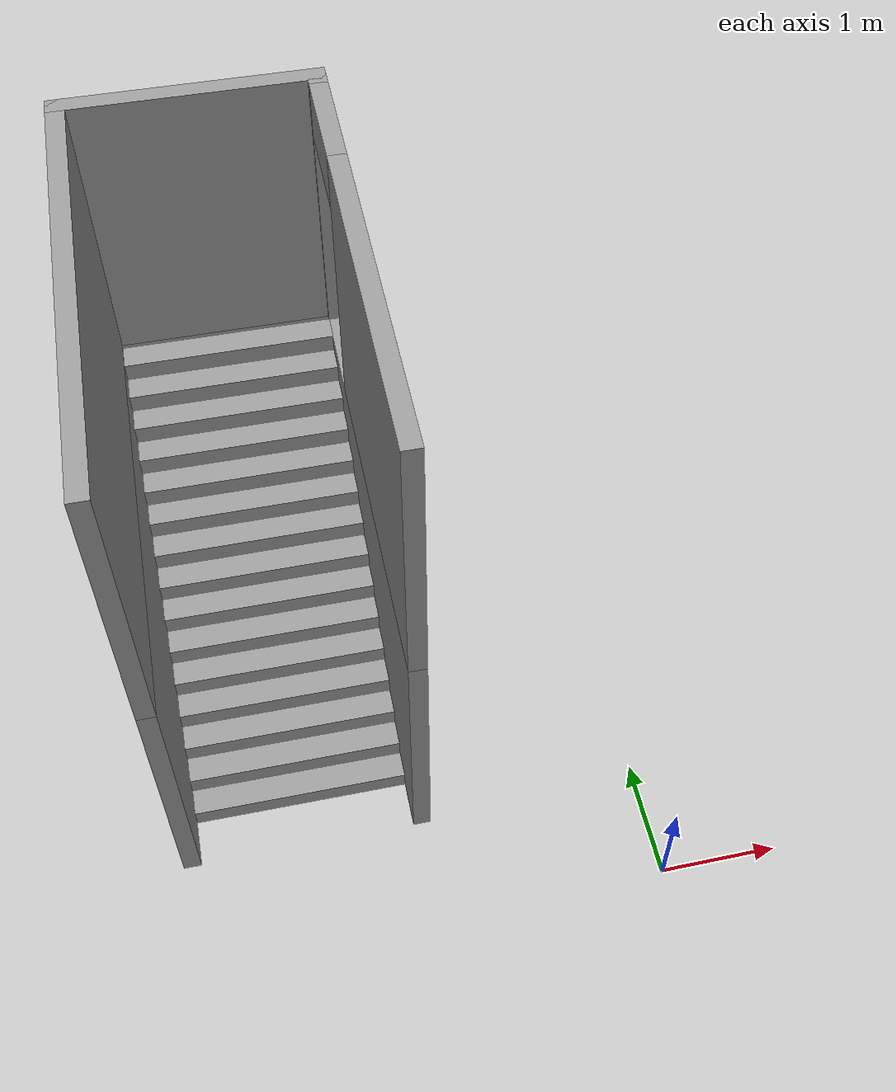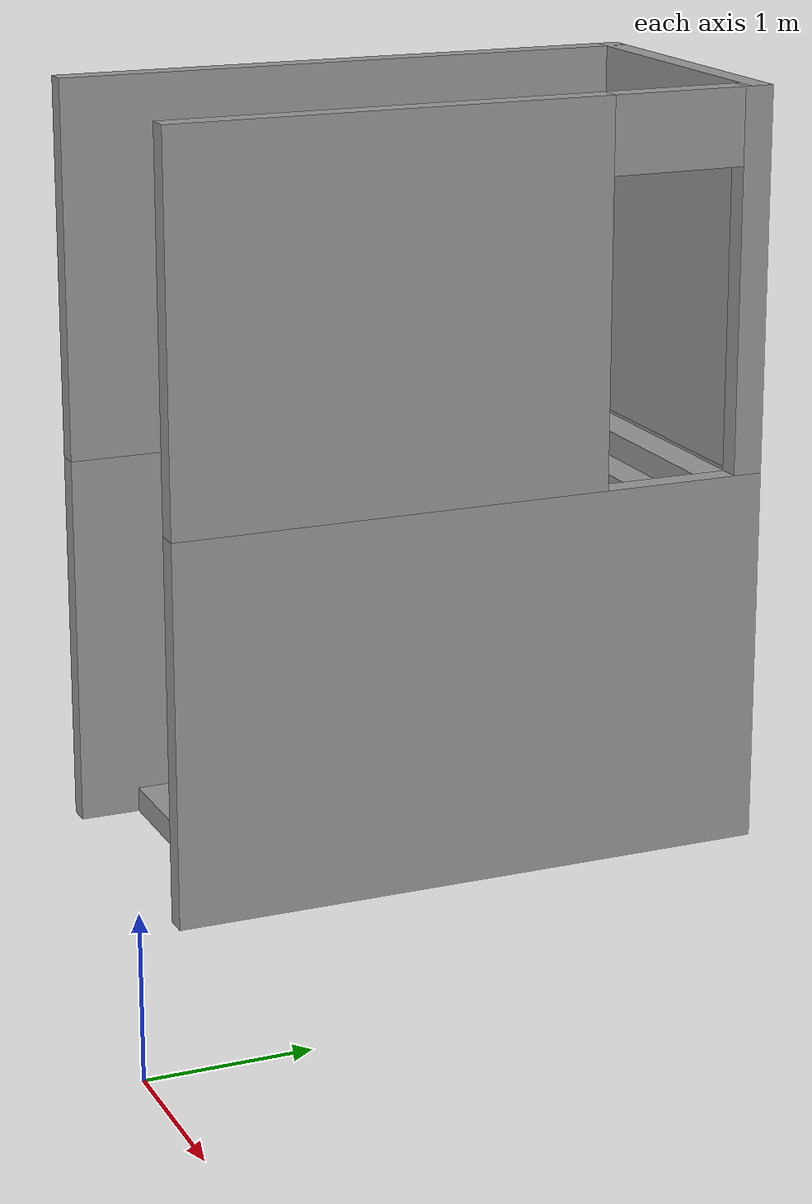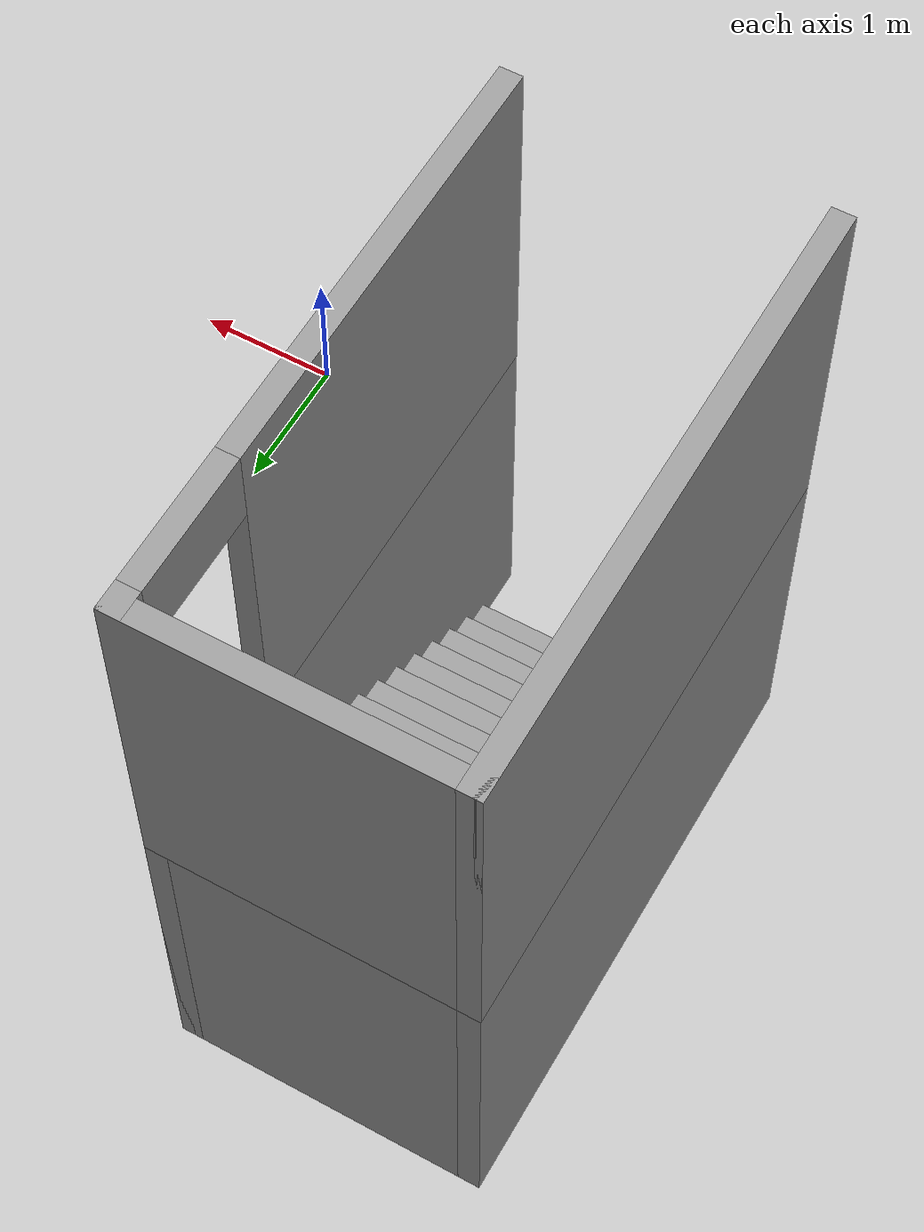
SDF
<sdf version="1.6">
 <model name="testbuilding">
  <link name="Stairs_1">
   <visual name="Stairs_1_Visual_6">
    <pose>-2.92151 2.72858 1.08333 0 -0 -3.14159</pose>
    <geometry><box><size>1.85169 0.227504 0.166667</size></box></geometry>
    <material>
     <script><uri>file://media/materials/scripts/gazebo.material</uri><name>Gazebo/Grey</name></script>
     <ambient>1 1 1 1</ambient>
    </material>
    <meta><layer>0</layer></meta>
   </visual>
   <visual name="Stairs_1_Visual_0">
    <pose>-2.92151 1.36356 0.083333 0 -0 -3.14159</pose>
    <geometry><box><size>1.85169 0.227504 0.166667</size></box></geometry>
    <material>
     <script><uri>file://media/materials/scripts/gazebo.material</uri><name>Gazebo/Grey</name></script>
     <ambient>1 1 1 1</ambient>
    </material>
    <meta><layer>0</layer></meta>
   </visual>
   <visual name="Stairs_1_Visual_1">
    <pose>-2.92151 1.59106 0.25 0 -0 -3.14159</pose>
    <geometry><box><size>1.85169 0.227504 0.166667</size></box></geometry>
    <material>
     <script><uri>file://media/materials/scripts/gazebo.material</uri><name>Gazebo/Grey</name></script>
     <ambient>1 1 1 1</ambient>
    </material>
    <meta><layer>0</layer></meta>
   </visual>
   <visual name="Stairs_1_Visual_2">
    <pose>-2.92151 1.81856 0.416667 0 -0 -3.14159</pose>
    <geometry><box><size>1.85169 0.227504 0.166667</size></box></geometry>
    <material>
     <script><uri>file://media/materials/scripts/gazebo.material</uri><name>Gazebo/Grey</name></script>
     <ambient>1 1 1 1</ambient>
    </material>
    <meta><layer>0</layer></meta>
   </visual>
   <visual name="Stairs_1_Visual_3">
    <pose>-2.92151 2.04607 0.583333 0 -0 -3.14159</pose>
    <geometry><box><size>1.85169 0.227504 0.166667</size></box></geometry>
    <material>
     <script><uri>file://media/materials/scripts/gazebo.material</uri><name>Gazebo/Grey</name></script>
     <ambient>1 1 1 1</ambient>
    </material>
    <meta><layer>0</layer></meta>
   </visual>
   <visual name="Stairs_1_Visual_4">
    <pose>-2.92151 2.27357 0.75 0 -0 -3.14159</pose>
    <geometry><box><size>1.85169 0.227504 0.166667</size></box></geometry>
    <material>
     <script><uri>file://media/materials/scripts/gazebo.material</uri><name>Gazebo/Grey</name></script>
     <ambient>1 1 1 1</ambient>
    </material>
    <meta><layer>0</layer></meta>
   </visual>
   <visual name="Stairs_1_Visual_5">
    <pose>-2.92151 2.50108 0.916667 0 -0 -3.14159</pose>
    <geometry><box><size>1.85169 0.227504 0.166667</size></box></geometry>
    <material>
     <script><uri>file://media/materials/scripts/gazebo.material</uri><name>Gazebo/Grey</name></script>
     <ambient>1 1 1 1</ambient>
    </material>
    <meta><layer>0</layer></meta>
   </visual>
   <visual name="Stairs_1_Visual_7">
    <pose>-2.92151 2.95609 1.25 0 -0 -3.14159</pose>
    <geometry><box><size>1.85169 0.227504 0.166667</size></box></geometry>
    <material>
     <script><uri>file://media/materials/scripts/gazebo.material</uri><name>Gazebo/Grey</name></script>
     <ambient>1 1 1 1</ambient>
    </material>
    <meta><layer>0</layer></meta>
   </visual>
   <visual name="Stairs_1_Visual_8">
    <pose>-2.92151 3.18359 1.41667 0 -0 -3.14159</pose>
    <geometry><box><size>1.85169 0.227504 0.166667</size></box></geometry>
    <material>
     <script><uri>file://media/materials/scripts/gazebo.material</uri><name>Gazebo/Grey</name></script>
     <ambient>1 1 1 1</ambient>
    </material>
    <meta><layer>0</layer></meta>
   </visual>
   <visual name="Stairs_1_Visual_9">
    <pose>-2.92151 3.41109 1.58333 0 -0 -3.14159</pose>
    <geometry><box><size>1.85169 0.227504 0.166667</size></box></geometry>
    <material>
     <script><uri>file://media/materials/scripts/gazebo.material</uri><name>Gazebo/Grey</name></script>
     <ambient>1 1 1 1</ambient>
    </material>
    <meta><layer>0</layer></meta>
   </visual>
   <visual name="Stairs_1_Visual_10">
    <pose>-2.92151 3.6386 1.75 0 -0 -3.14159</pose>
    <geometry><box><size>1.85169 0.227504 0.166667</size></box></geometry>
    <material>
     <script><uri>file://media/materials/scripts/gazebo.material</uri><name>Gazebo/Grey</name></script>
     <ambient>1 1 1 1</ambient>
    </material>
    <meta><layer>0</layer></meta>
   </visual>
   <visual name="Stairs_1_Visual_11">
    <pose>-2.92151 3.8661 1.91667 0 -0 -3.14159</pose>
    <geometry><box><size>1.85169 0.227504 0.166667</size></box></geometry>
    <material>
     <script><uri>file://media/materials/scripts/gazebo.material</uri><name>Gazebo/Grey</name></script>
     <ambient>1 1 1 1</ambient>
    </material>
    <meta><layer>0</layer></meta>
   </visual>
   <visual name="Stairs_1_Visual_12">
    <pose>-2.92151 4.09361 2.08333 0 -0 -3.14159</pose>
    <geometry><box><size>1.85169 0.227504 0.166667</size></box></geometry>
    <material>
     <script><uri>file://media/materials/scripts/gazebo.material</uri><name>Gazebo/Grey</name></script>
     <ambient>1 1 1 1</ambient>
    </material>
    <meta><layer>0</layer></meta>
   </visual>
   <visual name="Stairs_1_Visual_13">
    <pose>-2.92151 4.32111 2.25 0 -0 -3.14159</pose>
    <geometry><box><size>1.85169 0.227504 0.166667</size></box></geometry>
    <material>
     <script><uri>file://media/materials/scripts/gazebo.material</uri><name>Gazebo/Grey</name></script>
     <ambient>1 1 1 1</ambient>
    </material>
    <meta><layer>0</layer></meta>
   </visual>
   <visual name="Stairs_1_Visual_14">
    <pose>-2.92151 4.54862 2.41667 0 -0 -3.14159</pose>
    <geometry><box><size>1.85169 0.227504 0.166667</size></box></geometry>
    <material>
     <script><uri>file://media/materials/scripts/gazebo.material</uri><name>Gazebo/Grey</name></script>
     <ambient>1 1 1 1</ambient>
    </material>
    <meta><layer>0</layer></meta>
   </visual>
   <collision name="Stairs_1_Collision_0">
    <pose>-2.92151 1.36356 0.083333 0 0 -3.14159</pose>
    <geometry><box><size>1.85169 0.227504 0.166667</size></box></geometry>
    <surface>
     <friction>
      <ode><mu>1</mu><mu2>1</mu2><fdir1>0 0 0</fdir1><slip1>0</slip1><slip2>0</slip2></ode>
      <torsional>
       <coefficient>1</coefficient>
       <patch_radius>0</patch_radius>
       <surface_radius>0</surface_radius>
       <use_patch_radius>1</use_patch_radius>
       <ode><slip>0</slip></ode>
      </torsional>
     </friction>
     <bounce><restitution_coefficient>0</restitution_coefficient><threshold>1e+06</threshold></bounce>
     <contact>
      <collide_without_contact>0</collide_without_contact>
      <collide_without_contact_bitmask>1</collide_without_contact_bitmask>
      <collide_bitmask>1</collide_bitmask>
      <ode>
       <soft_cfm>0</soft_cfm>
       <soft_erp>0.2</soft_erp>
       <kp>1e+13</kp>
       <kd>1</kd>
       <max_vel>0.01</max_vel>
       <min_depth>0</min_depth>
      </ode>
      <bullet>
       <split_impulse>1</split_impulse>
       <split_impulse_penetration_threshold>-0.01</split_impulse_penetration_threshold>
       <soft_cfm>0</soft_cfm>
       <soft_erp>0.2</soft_erp>
       <kp>1e+13</kp>
       <kd>1</kd>
      </bullet>
     </contact>
    </surface>
   </collision>
   <collision name="Stairs_1_Collision_1">
    <pose>-2.92151 1.59106 0.25 0 0 -3.14159</pose>
    <geometry><box><size>1.85169 0.227504 0.166667</size></box></geometry>
    <surface>
     <friction>
      <ode><mu>1</mu><mu2>1</mu2><fdir1>0 0 0</fdir1><slip1>0</slip1><slip2>0</slip2></ode>
      <torsional>
       <coefficient>1</coefficient>
       <patch_radius>0</patch_radius>
       <surface_radius>0</surface_radius>
       <use_patch_radius>1</use_patch_radius>
       <ode><slip>0</slip></ode>
      </torsional>
     </friction>
     <bounce><restitution_coefficient>0</restitution_coefficient><threshold>1e+06</threshold></bounce>
     <contact>
      <collide_without_contact>0</collide_without_contact>
      <collide_without_contact_bitmask>1</collide_without_contact_bitmask>
      <collide_bitmask>1</collide_bitmask>
      <ode>
       <soft_cfm>0</soft_cfm>
       <soft_erp>0.2</soft_erp>
       <kp>1e+13</kp>
       <kd>1</kd>
       <max_vel>0.01</max_vel>
       <min_depth>0</min_depth>
      </ode>
      <bullet>
       <split_impulse>1</split_impulse>
       <split_impulse_penetration_threshold>-0.01</split_impulse_penetration_threshold>
       <soft_cfm>0</soft_cfm>
       <soft_erp>0.2</soft_erp>
       <kp>1e+13</kp>
       <kd>1</kd>
      </bullet>
     </contact>
    </surface>
   </collision>
   <collision name="Stairs_1_Collision_2">
    <pose>-2.92151 1.81856 0.416667 0 0 -3.14159</pose>
    <geometry><box><size>1.85169 0.227504 0.166667</size></box></geometry>
    <surface>
     <friction>
      <ode><mu>1</mu><mu2>1</mu2><fdir1>0 0 0</fdir1><slip1>0</slip1><slip2>0</slip2></ode>
      <torsional>
       <coefficient>1</coefficient>
       <patch_radius>0</patch_radius>
       <surface_radius>0</surface_radius>
       <use_patch_radius>1</use_patch_radius>
       <ode><slip>0</slip></ode>
      </torsional>
     </friction>
     <bounce><restitution_coefficient>0</restitution_coefficient><threshold>1e+06</threshold></bounce>
     <contact>
      <collide_without_contact>0</collide_without_contact>
      <collide_without_contact_bitmask>1</collide_without_contact_bitmask>
      <collide_bitmask>1</collide_bitmask>
      <ode>
       <soft_cfm>0</soft_cfm>
       <soft_erp>0.2</soft_erp>
       <kp>1e+13</kp>
       <kd>1</kd>
       <max_vel>0.01</max_vel>
       <min_depth>0</min_depth>
      </ode>
      <bullet>
       <split_impulse>1</split_impulse>
       <split_impulse_penetration_threshold>-0.01</split_impulse_penetration_threshold>
       <soft_cfm>0</soft_cfm>
       <soft_erp>0.2</soft_erp>
       <kp>1e+13</kp>
       <kd>1</kd>
      </bullet>
     </contact>
    </surface>
   </collision>
   <collision name="Stairs_1_Collision_3">
    <pose>-2.92151 2.04607 0.583333 0 0 -3.14159</pose>
    <geometry><box><size>1.85169 0.227504 0.166667</size></box></geometry>
    <surface>
     <friction>
      <ode><mu>1</mu><mu2>1</mu2><fdir1>0 0 0</fdir1><slip1>0</slip1><slip2>0</slip2></ode>
      <torsional>
       <coefficient>1</coefficient>
       <patch_radius>0</patch_radius>
       <surface_radius>0</surface_radius>
       <use_patch_radius>1</use_patch_radius>
       <ode><slip>0</slip></ode>
      </torsional>
     </friction>
     <bounce><restitution_coefficient>0</restitution_coefficient><threshold>1e+06</threshold></bounce>
     <contact>
      <collide_without_contact>0</collide_without_contact>
      <collide_without_contact_bitmask>1</collide_without_contact_bitmask>
      <collide_bitmask>1</collide_bitmask>
      <ode>
       <soft_cfm>0</soft_cfm>
       <soft_erp>0.2</soft_erp>
       <kp>1e+13</kp>
       <kd>1</kd>
       <max_vel>0.01</max_vel>
       <min_depth>0</min_depth>
      </ode>
      <bullet>
       <split_impulse>1</split_impulse>
       <split_impulse_penetration_threshold>-0.01</split_impulse_penetration_threshold>
       <soft_cfm>0</soft_cfm>
       <soft_erp>0.2</soft_erp>
       <kp>1e+13</kp>
       <kd>1</kd>
      </bullet>
     </contact>
    </surface>
   </collision>
   <collision name="Stairs_1_Collision_4">
    <pose>-2.92151 2.27357 0.75 0 0 -3.14159</pose>
    <geometry><box><size>1.85169 0.227504 0.166667</size></box></geometry>
    <surface>
     <friction>
      <ode><mu>1</mu><mu2>1</mu2><fdir1>0 0 0</fdir1><slip1>0</slip1><slip2>0</slip2></ode>
      <torsional>
       <coefficient>1</coefficient>
       <patch_radius>0</patch_radius>
       <surface_radius>0</surface_radius>
       <use_patch_radius>1</use_patch_radius>
       <ode><slip>0</slip></ode>
      </torsional>
     </friction>
     <bounce><restitution_coefficient>0</restitution_coefficient><threshold>1e+06</threshold></bounce>
     <contact>
      <collide_without_contact>0</collide_without_contact>
      <collide_without_contact_bitmask>1</collide_without_contact_bitmask>
      <collide_bitmask>1</collide_bitmask>
      <ode>
       <soft_cfm>0</soft_cfm>
       <soft_erp>0.2</soft_erp>
       <kp>1e+13</kp>
       <kd>1</kd>
       <max_vel>0.01</max_vel>
       <min_depth>0</min_depth>
      </ode>
      <bullet>
       <split_impulse>1</split_impulse>
       <split_impulse_penetration_threshold>-0.01</split_impulse_penetration_threshold>
       <soft_cfm>0</soft_cfm>
       <soft_erp>0.2</soft_erp>
       <kp>1e+13</kp>
       <kd>1</kd>
      </bullet>
     </contact>
    </surface>
   </collision>
   <collision name="Stairs_1_Collision_5">
    <pose>-2.92151 2.50108 0.916667 0 0 -3.14159</pose>
    <geometry><box><size>1.85169 0.227504 0.166667</size></box></geometry>
    <surface>
     <friction>
      <ode><mu>1</mu><mu2>1</mu2><fdir1>0 0 0</fdir1><slip1>0</slip1><slip2>0</slip2></ode>
      <torsional>
       <coefficient>1</coefficient>
       <patch_radius>0</patch_radius>
       <surface_radius>0</surface_radius>
       <use_patch_radius>1</use_patch_radius>
       <ode><slip>0</slip></ode>
      </torsional>
     </friction>
     <bounce><restitution_coefficient>0</restitution_coefficient><threshold>1e+06</threshold></bounce>
     <contact>
      <collide_without_contact>0</collide_without_contact>
      <collide_without_contact_bitmask>1</collide_without_contact_bitmask>
      <collide_bitmask>1</collide_bitmask>
      <ode>
       <soft_cfm>0</soft_cfm>
       <soft_erp>0.2</soft_erp>
       <kp>1e+13</kp>
       <kd>1</kd>
       <max_vel>0.01</max_vel>
       <min_depth>0</min_depth>
      </ode>
      <bullet>
       <split_impulse>1</split_impulse>
       <split_impulse_penetration_threshold>-0.01</split_impulse_penetration_threshold>
       <soft_cfm>0</soft_cfm>
       <soft_erp>0.2</soft_erp>
       <kp>1e+13</kp>
       <kd>1</kd>
      </bullet>
     </contact>
    </surface>
   </collision>
   <collision name="Stairs_1_Collision_6">
    <pose>-2.92151 2.72858 1.08333 0 0 -3.14159</pose>
    <geometry><box><size>1.85169 0.227504 0.166667</size></box></geometry>
    <surface>
     <friction>
      <ode><mu>1</mu><mu2>1</mu2><fdir1>0 0 0</fdir1><slip1>0</slip1><slip2>0</slip2></ode>
      <torsional>
       <coefficient>1</coefficient>
       <patch_radius>0</patch_radius>
       <surface_radius>0</surface_radius>
       <use_patch_radius>1</use_patch_radius>
       <ode><slip>0</slip></ode>
      </torsional>
     </friction>
     <bounce><restitution_coefficient>0</restitution_coefficient><threshold>1e+06</threshold></bounce>
     <contact>
      <collide_without_contact>0</collide_without_contact>
      <collide_without_contact_bitmask>1</collide_without_contact_bitmask>
      <collide_bitmask>1</collide_bitmask>
      <ode>
       <soft_cfm>0</soft_cfm>
       <soft_erp>0.2</soft_erp>
       <kp>1e+13</kp>
       <kd>1</kd>
       <max_vel>0.01</max_vel>
       <min_depth>0</min_depth>
      </ode>
      <bullet>
       <split_impulse>1</split_impulse>
       <split_impulse_penetration_threshold>-0.01</split_impulse_penetration_threshold>
       <soft_cfm>0</soft_cfm>
       <soft_erp>0.2</soft_erp>
       <kp>1e+13</kp>
       <kd>1</kd>
      </bullet>
     </contact>
    </surface>
   </collision>
   <collision name="Stairs_1_Collision_7">
    <pose>-2.92151 2.95609 1.25 0 0 -3.14159</pose>
    <geometry><box><size>1.85169 0.227504 0.166667</size></box></geometry>
    <surface>
     <friction>
      <ode><mu>1</mu><mu2>1</mu2><fdir1>0 0 0</fdir1><slip1>0</slip1><slip2>0</slip2></ode>
      <torsional>
       <coefficient>1</coefficient>
       <patch_radius>0</patch_radius>
       <surface_radius>0</surface_radius>
       <use_patch_radius>1</use_patch_radius>
       <ode><slip>0</slip></ode>
      </torsional>
     </friction>
     <bounce><restitution_coefficient>0</restitution_coefficient><threshold>1e+06</threshold></bounce>
     <contact>
      <collide_without_contact>0</collide_without_contact>
      <collide_without_contact_bitmask>1</collide_without_contact_bitmask>
      <collide_bitmask>1</collide_bitmask>
      <ode>
       <soft_cfm>0</soft_cfm>
       <soft_erp>0.2</soft_erp>
       <kp>1e+13</kp>
       <kd>1</kd>
       <max_vel>0.01</max_vel>
       <min_depth>0</min_depth>
      </ode>
      <bullet>
       <split_impulse>1</split_impulse>
       <split_impulse_penetration_threshold>-0.01</split_impulse_penetration_threshold>
       <soft_cfm>0</soft_cfm>
       <soft_erp>0.2</soft_erp>
       <kp>1e+13</kp>
       <kd>1</kd>
      </bullet>
     </contact>
    </surface>
   </collision>
   <collision name="Stairs_1_Collision_8">
    <pose>-2.92151 3.18359 1.41667 0 0 -3.14159</pose>
    <geometry><box><size>1.85169 0.227504 0.166667</size></box></geometry>
    <surface>
     <friction>
      <ode><mu>1</mu><mu2>1</mu2><fdir1>0 0 0</fdir1><slip1>0</slip1><slip2>0</slip2></ode>
      <torsional>
       <coefficient>1</coefficient>
       <patch_radius>0</patch_radius>
       <surface_radius>0</surface_radius>
       <use_patch_radius>1</use_patch_radius>
       <ode><slip>0</slip></ode>
      </torsional>
     </friction>
     <bounce><restitution_coefficient>0</restitution_coefficient><threshold>1e+06</threshold></bounce>
     <contact>
      <collide_without_contact>0</collide_without_contact>
      <collide_without_contact_bitmask>1</collide_without_contact_bitmask>
      <collide_bitmask>1</collide_bitmask>
      <ode>
       <soft_cfm>0</soft_cfm>
       <soft_erp>0.2</soft_erp>
       <kp>1e+13</kp>
       <kd>1</kd>
       <max_vel>0.01</max_vel>
       <min_depth>0</min_depth>
      </ode>
      <bullet>
       <split_impulse>1</split_impulse>
       <split_impulse_penetration_threshold>-0.01</split_impulse_penetration_threshold>
       <soft_cfm>0</soft_cfm>
       <soft_erp>0.2</soft_erp>
       <kp>1e+13</kp>
       <kd>1</kd>
      </bullet>
     </contact>
    </surface>
   </collision>
   <collision name="Stairs_1_Collision_9">
    <pose>-2.92151 3.41109 1.58333 0 0 -3.14159</pose>
    <geometry><box><size>1.85169 0.227504 0.166667</size></box></geometry>
    <surface>
     <friction>
      <ode><mu>1</mu><mu2>1</mu2><fdir1>0 0 0</fdir1><slip1>0</slip1><slip2>0</slip2></ode>
      <torsional>
       <coefficient>1</coefficient>
       <patch_radius>0</patch_radius>
       <surface_radius>0</surface_radius>
       <use_patch_radius>1</use_patch_radius>
       <ode><slip>0</slip></ode>
      </torsional>
     </friction>
     <bounce><restitution_coefficient>0</restitution_coefficient><threshold>1e+06</threshold></bounce>
     <contact>
      <collide_without_contact>0</collide_without_contact>
      <collide_without_contact_bitmask>1</collide_without_contact_bitmask>
      <collide_bitmask>1</collide_bitmask>
      <ode>
       <soft_cfm>0</soft_cfm>
       <soft_erp>0.2</soft_erp>
       <kp>1e+13</kp>
       <kd>1</kd>
       <max_vel>0.01</max_vel>
       <min_depth>0</min_depth>
      </ode>
      <bullet>
       <split_impulse>1</split_impulse>
       <split_impulse_penetration_threshold>-0.01</split_impulse_penetration_threshold>
       <soft_cfm>0</soft_cfm>
       <soft_erp>0.2</soft_erp>
       <kp>1e+13</kp>
       <kd>1</kd>
      </bullet>
     </contact>
    </surface>
   </collision>
   <collision name="Stairs_1_Collision_10">
    <pose>-2.92151 3.6386 1.75 0 0 -3.14159</pose>
    <geometry><box><size>1.85169 0.227504 0.166667</size></box></geometry>
    <surface>
     <friction>
      <ode><mu>1</mu><mu2>1</mu2><fdir1>0 0 0</fdir1><slip1>0</slip1><slip2>0</slip2></ode>
      <torsional>
       <coefficient>1</coefficient>
       <patch_radius>0</patch_radius>
       <surface_radius>0</surface_radius>
       <use_patch_radius>1</use_patch_radius>
       <ode><slip>0</slip></ode>
      </torsional>
     </friction>
     <bounce><restitution_coefficient>0</restitution_coefficient><threshold>1e+06</threshold></bounce>
     <contact>
      <collide_without_contact>0</collide_without_contact>
      <collide_without_contact_bitmask>1</collide_without_contact_bitmask>
      <collide_bitmask>1</collide_bitmask>
      <ode>
       <soft_cfm>0</soft_cfm>
       <soft_erp>0.2</soft_erp>
       <kp>1e+13</kp>
       <kd>1</kd>
       <max_vel>0.01</max_vel>
       <min_depth>0</min_depth>
      </ode>
      <bullet>
       <split_impulse>1</split_impulse>
       <split_impulse_penetration_threshold>-0.01</split_impulse_penetration_threshold>
       <soft_cfm>0</soft_cfm>
       <soft_erp>0.2</soft_erp>
       <kp>1e+13</kp>
       <kd>1</kd>
      </bullet>
     </contact>
    </surface>
   </collision>
   <collision name="Stairs_1_Collision_11">
    <pose>-2.92151 3.8661 1.91667 0 0 -3.14159</pose>
    <geometry><box><size>1.85169 0.227504 0.166667</size></box></geometry>
    <surface>
     <friction>
      <ode><mu>1</mu><mu2>1</mu2><fdir1>0 0 0</fdir1><slip1>0</slip1><slip2>0</slip2></ode>
      <torsional>
       <coefficient>1</coefficient>
       <patch_radius>0</patch_radius>
       <surface_radius>0</surface_radius>
       <use_patch_radius>1</use_patch_radius>
       <ode><slip>0</slip></ode>
      </torsional>
     </friction>
     <bounce><restitution_coefficient>0</restitution_coefficient><threshold>1e+06</threshold></bounce>
     <contact>
      <collide_without_contact>0</collide_without_contact>
      <collide_without_contact_bitmask>1</collide_without_contact_bitmask>
      <collide_bitmask>1</collide_bitmask>
      <ode>
       <soft_cfm>0</soft_cfm>
       <soft_erp>0.2</soft_erp>
       <kp>1e+13</kp>
       <kd>1</kd>
       <max_vel>0.01</max_vel>
       <min_depth>0</min_depth>
      </ode>
      <bullet>
       <split_impulse>1</split_impulse>
       <split_impulse_penetration_threshold>-0.01</split_impulse_penetration_threshold>
       <soft_cfm>0</soft_cfm>
       <soft_erp>0.2</soft_erp>
       <kp>1e+13</kp>
       <kd>1</kd>
      </bullet>
     </contact>
    </surface>
   </collision>
   <collision name="Stairs_1_Collision_12">
    <pose>-2.92151 4.09361 2.08333 0 0 -3.14159</pose>
    <geometry><box><size>1.85169 0.227504 0.166667</size></box></geometry>
    <surface>
     <friction>
      <ode><mu>1</mu><mu2>1</mu2><fdir1>0 0 0</fdir1><slip1>0</slip1><slip2>0</slip2></ode>
      <torsional>
       <coefficient>1</coefficient>
       <patch_radius>0</patch_radius>
       <surface_radius>0</surface_radius>
       <use_patch_radius>1</use_patch_radius>
       <ode><slip>0</slip></ode>
      </torsional>
     </friction>
     <bounce><restitution_coefficient>0</restitution_coefficient><threshold>1e+06</threshold></bounce>
     <contact>
      <collide_without_contact>0</collide_without_contact>
      <collide_without_contact_bitmask>1</collide_without_contact_bitmask>
      <collide_bitmask>1</collide_bitmask>
      <ode>
       <soft_cfm>0</soft_cfm>
       <soft_erp>0.2</soft_erp>
       <kp>1e+13</kp>
       <kd>1</kd>
       <max_vel>0.01</max_vel>
       <min_depth>0</min_depth>
      </ode>
      <bullet>
       <split_impulse>1</split_impulse>
       <split_impulse_penetration_threshold>-0.01</split_impulse_penetration_threshold>
       <soft_cfm>0</soft_cfm>
       <soft_erp>0.2</soft_erp>
       <kp>1e+13</kp>
       <kd>1</kd>
      </bullet>
     </contact>
    </surface>
   </collision>
   <collision name="Stairs_1_Collision_13">
    <pose>-2.92151 4.32111 2.25 0 0 -3.14159</pose>
    <geometry><box><size>1.85169 0.227504 0.166667</size></box></geometry>
    <surface>
     <friction>
      <ode><mu>1</mu><mu2>1</mu2><fdir1>0 0 0</fdir1><slip1>0</slip1><slip2>0</slip2></ode>
      <torsional>
       <coefficient>1</coefficient>
       <patch_radius>0</patch_radius>
       <surface_radius>0</surface_radius>
       <use_patch_radius>1</use_patch_radius>
       <ode><slip>0</slip></ode>
      </torsional>
     </friction>
     <bounce><restitution_coefficient>0</restitution_coefficient><threshold>1e+06</threshold></bounce>
     <contact>
      <collide_without_contact>0</collide_without_contact>
      <collide_without_contact_bitmask>1</collide_without_contact_bitmask>
      <collide_bitmask>1</collide_bitmask>
      <ode>
       <soft_cfm>0</soft_cfm>
       <soft_erp>0.2</soft_erp>
       <kp>1e+13</kp>
       <kd>1</kd>
       <max_vel>0.01</max_vel>
       <min_depth>0</min_depth>
      </ode>
      <bullet>
       <split_impulse>1</split_impulse>
       <split_impulse_penetration_threshold>-0.01</split_impulse_penetration_threshold>
       <soft_cfm>0</soft_cfm>
       <soft_erp>0.2</soft_erp>
       <kp>1e+13</kp>
       <kd>1</kd>
      </bullet>
     </contact>
    </surface>
   </collision>
   <collision name="Stairs_1_Collision_14">
    <pose>-2.92151 4.54862 2.41667 0 0 -3.14159</pose>
    <geometry><box><size>1.85169 0.227504 0.166667</size></box></geometry>
    <surface>
     <friction>
      <ode><mu>1</mu><mu2>1</mu2><fdir1>0 0 0</fdir1><slip1>0</slip1><slip2>0</slip2></ode>
      <torsional>
       <coefficient>1</coefficient>
       <patch_radius>0</patch_radius>
       <surface_radius>0</surface_radius>
       <use_patch_radius>1</use_patch_radius>
       <ode><slip>0</slip></ode>
      </torsional>
     </friction>
     <bounce><restitution_coefficient>0</restitution_coefficient><threshold>1e+06</threshold></bounce>
     <contact>
      <collide_without_contact>0</collide_without_contact>
      <collide_without_contact_bitmask>1</collide_without_contact_bitmask>
      <collide_bitmask>1</collide_bitmask>
      <ode>
       <soft_cfm>0</soft_cfm>
       <soft_erp>0.2</soft_erp>
       <kp>1e+13</kp>
       <kd>1</kd>
       <max_vel>0.01</max_vel>
       <min_depth>0</min_depth>
      </ode>
      <bullet>
       <split_impulse>1</split_impulse>
       <split_impulse_penetration_threshold>-0.01</split_impulse_penetration_threshold>
       <soft_cfm>0</soft_cfm>
       <soft_erp>0.2</soft_erp>
       <kp>1e+13</kp>
       <kd>1</kd>
      </bullet>
     </contact>
    </surface>
   </collision>
  </link>
  <link name="Wall_13">
   <pose>-3.925 2.85 0 0 -0 1.5708</pose>
   <visual name="Wall_13_Visual">
    <pose>0 0 1.25 0 -0 0</pose>
    <geometry><box><size>4 0.15 2.5</size></box></geometry>
    <material>
     <script><uri>file://media/materials/scripts/gazebo.material</uri><name>Gazebo/Grey</name></script>
     <ambient>1 1 1 1</ambient>
    </material>
    <meta><layer>0</layer></meta>
   </visual>
   <collision name="Wall_13_Collision">
    <pose>0 0 1.25 0 -0 0</pose>
    <geometry><box><size>4 0.15 2.5</size></box></geometry>
    <surface>
     <friction>
      <ode><mu>1</mu><mu2>1</mu2><fdir1>0 0 0</fdir1><slip1>0</slip1><slip2>0</slip2></ode>
      <torsional>
       <coefficient>1</coefficient>
       <patch_radius>0</patch_radius>
       <surface_radius>0</surface_radius>
       <use_patch_radius>1</use_patch_radius>
       <ode><slip>0</slip></ode>
      </torsional>
     </friction>
     <bounce><restitution_coefficient>0</restitution_coefficient><threshold>1e+06</threshold></bounce>
     <contact>
      <collide_without_contact>0</collide_without_contact>
      <collide_without_contact_bitmask>1</collide_without_contact_bitmask>
      <collide_bitmask>1</collide_bitmask>
      <ode>
       <soft_cfm>0</soft_cfm>
       <soft_erp>0.2</soft_erp>
       <kp>1e+13</kp>
       <kd>1</kd>
       <max_vel>0.01</max_vel>
       <min_depth>0</min_depth>
      </ode>
      <bullet>
       <split_impulse>1</split_impulse>
       <split_impulse_penetration_threshold>-0.01</split_impulse_penetration_threshold>
       <soft_cfm>0</soft_cfm>
       <soft_erp>0.2</soft_erp>
       <kp>1e+13</kp>
       <kd>1</kd>
      </bullet>
     </contact>
    </surface>
   </collision>
  </link>
  <link name="Wall_15">
   <pose>-2.925 4.775 0 0 -0 0</pose>
   <visual name="Wall_15_Visual">
    <pose>0 0 1.25 0 -0 0</pose>
    <geometry><box><size>2.15 0.15 2.5</size></box></geometry>
    <material>
     <script><uri>file://media/materials/scripts/gazebo.material</uri><name>Gazebo/Grey</name></script>
     <ambient>1 1 1 1</ambient>
    </material>
    <meta><layer>0</layer></meta>
   </visual>
   <collision name="Wall_15_Collision">
    <pose>0 0 1.25 0 -0 0</pose>
    <geometry><box><size>2.15 0.15 2.5</size></box></geometry>
    <surface>
     <friction>
      <ode><mu>1</mu><mu2>1</mu2><fdir1>0 0 0</fdir1><slip1>0</slip1><slip2>0</slip2></ode>
      <torsional>
       <coefficient>1</coefficient>
       <patch_radius>0</patch_radius>
       <surface_radius>0</surface_radius>
       <use_patch_radius>1</use_patch_radius>
       <ode><slip>0</slip></ode>
      </torsional>
     </friction>
     <bounce><restitution_coefficient>0</restitution_coefficient><threshold>1e+06</threshold></bounce>
     <contact>
      <collide_without_contact>0</collide_without_contact>
      <collide_without_contact_bitmask>1</collide_without_contact_bitmask>
      <collide_bitmask>1</collide_bitmask>
      <ode>
       <soft_cfm>0</soft_cfm>
       <soft_erp>0.2</soft_erp>
       <kp>1e+13</kp>
       <kd>1</kd>
       <max_vel>0.01</max_vel>
       <min_depth>0</min_depth>
      </ode>
      <bullet>
       <split_impulse>1</split_impulse>
       <split_impulse_penetration_threshold>-0.01</split_impulse_penetration_threshold>
       <soft_cfm>0</soft_cfm>
       <soft_erp>0.2</soft_erp>
       <kp>1e+13</kp>
       <kd>1</kd>
      </bullet>
     </contact>
    </surface>
   </collision>
  </link>
  <link name="Wall_28">
   <pose>-3.925 2.85 2.5 0 -0 1.5708</pose>
   <visual name="Wall_28_Visual">
    <pose>0 0 1.25 0 -0 0</pose>
    <geometry><box><size>4 0.15 2.5</size></box></geometry>
    <material>
     <script><uri>file://media/materials/scripts/gazebo.material</uri><name>Gazebo/Grey</name></script>
     <ambient>1 1 1 1</ambient>
    </material>
    <meta><layer>1</layer></meta>
   </visual>
   <collision name="Wall_28_Collision">
    <pose>0 0 1.25 0 -0 0</pose>
    <geometry><box><size>4 0.15 2.5</size></box></geometry>
    <surface>
     <friction>
      <ode><mu>1</mu><mu2>1</mu2><fdir1>0 0 0</fdir1><slip1>0</slip1><slip2>0</slip2></ode>
      <torsional>
       <coefficient>1</coefficient>
       <patch_radius>0</patch_radius>
       <surface_radius>0</surface_radius>
       <use_patch_radius>1</use_patch_radius>
       <ode><slip>0</slip></ode>
      </torsional>
     </friction>
     <bounce><restitution_coefficient>0</restitution_coefficient><threshold>1e+06</threshold></bounce>
     <contact>
      <collide_without_contact>0</collide_without_contact>
      <collide_without_contact_bitmask>1</collide_without_contact_bitmask>
      <collide_bitmask>1</collide_bitmask>
      <ode>
       <soft_cfm>0</soft_cfm>
       <soft_erp>0.2</soft_erp>
       <kp>1e+13</kp>
       <kd>1</kd>
       <max_vel>0.01</max_vel>
       <min_depth>0</min_depth>
      </ode>
      <bullet>
       <split_impulse>1</split_impulse>
       <split_impulse_penetration_threshold>-0.01</split_impulse_penetration_threshold>
       <soft_cfm>0</soft_cfm>
       <soft_erp>0.2</soft_erp>
       <kp>1e+13</kp>
       <kd>1</kd>
      </bullet>
     </contact>
    </surface>
   </collision>
  </link>
  <link name="Wall_29">
   <pose>-2.925 4.775 2.5 0 -0 0</pose>
   <visual name="Wall_29_Visual">
    <pose>0 0 1.25 0 -0 0</pose>
    <geometry><box><size>2.15 0.15 2.5</size></box></geometry>
    <material>
     <script><uri>file://media/materials/scripts/gazebo.material</uri><name>Gazebo/Grey</name></script>
     <ambient>1 1 1 1</ambient>
    </material>
    <meta><layer>1</layer></meta>
   </visual>
   <collision name="Wall_29_Collision">
    <pose>0 0 1.25 0 -0 0</pose>
    <geometry><box><size>2.15 0.15 2.5</size></box></geometry>
    <surface>
     <friction>
      <ode><mu>1</mu><mu2>1</mu2><fdir1>0 0 0</fdir1><slip1>0</slip1><slip2>0</slip2></ode>
      <torsional>
       <coefficient>1</coefficient>
       <patch_radius>0</patch_radius>
       <surface_radius>0</surface_radius>
       <use_patch_radius>1</use_patch_radius>
       <ode><slip>0</slip></ode>
      </torsional>
     </friction>
     <bounce><restitution_coefficient>0</restitution_coefficient><threshold>1e+06</threshold></bounce>
     <contact>
      <collide_without_contact>0</collide_without_contact>
      <collide_without_contact_bitmask>1</collide_without_contact_bitmask>
      <collide_bitmask>1</collide_bitmask>
      <ode>
       <soft_cfm>0</soft_cfm>
       <soft_erp>0.2</soft_erp>
       <kp>1e+13</kp>
       <kd>1</kd>
       <max_vel>0.01</max_vel>
       <min_depth>0</min_depth>
      </ode>
      <bullet>
       <split_impulse>1</split_impulse>
       <split_impulse_penetration_threshold>-0.01</split_impulse_penetration_threshold>
       <soft_cfm>0</soft_cfm>
       <soft_erp>0.2</soft_erp>
       <kp>1e+13</kp>
       <kd>1</kd>
      </bullet>
     </contact>
    </surface>
   </collision>
  </link>
  <link name="Wall_35">
   <pose>-1.925 2.85 2.5 0 0 -1.5708</pose>
   <visual name="Wall_35_Visual_0">
    <pose>-1.90294 0 1.25 0 -0 0</pose>
    <geometry><box><size>0.194117 0.15 2.5</size></box></geometry>
    <material>
     <script><uri>file://media/materials/scripts/gazebo.material</uri><name>Gazebo/Grey</name></script>
     <ambient>1 1 1 1</ambient>
    </material>
    <meta><layer>1</layer></meta>
   </visual>
   <visual name="Wall_35_Visual_1">
    <pose>0.547059 0 1.25 0 -0 0</pose>
    <geometry><box><size>2.90588 0.15 2.5</size></box></geometry>
    <material>
     <script><uri>file://media/materials/scripts/gazebo.material</uri><name>Gazebo/Grey</name></script>
     <ambient>1 1 1 1</ambient>
    </material>
    <meta><layer>1</layer></meta>
   </visual>
   <visual name="Wall_35_Visual_2">
    <pose>-1.35588 0 2.25 0 -0 0</pose>
    <geometry><box><size>0.9 0.15 0.5</size></box></geometry>
    <material>
     <script><uri>file://media/materials/scripts/gazebo.material</uri><name>Gazebo/Grey</name></script>
     <ambient>1 1 1 1</ambient>
    </material>
    <meta><layer>1</layer></meta>
   </visual>
   <collision name="Wall_35_Collision_0">
    <pose>-1.90294 0 1.25 0 -0 0</pose>
    <geometry><box><size>0.194117 0.15 2.5</size></box></geometry>
    <surface>
     <friction>
      <ode><mu>1</mu><mu2>1</mu2><fdir1>0 0 0</fdir1><slip1>0</slip1><slip2>0</slip2></ode>
      <torsional>
       <coefficient>1</coefficient>
       <patch_radius>0</patch_radius>
       <surface_radius>0</surface_radius>
       <use_patch_radius>1</use_patch_radius>
       <ode><slip>0</slip></ode>
      </torsional>
     </friction>
     <bounce><restitution_coefficient>0</restitution_coefficient><threshold>1e+06</threshold></bounce>
     <contact>
      <collide_without_contact>0</collide_without_contact>
      <collide_without_contact_bitmask>1</collide_without_contact_bitmask>
      <collide_bitmask>1</collide_bitmask>
      <ode>
       <soft_cfm>0</soft_cfm>
       <soft_erp>0.2</soft_erp>
       <kp>1e+13</kp>
       <kd>1</kd>
       <max_vel>0.01</max_vel>
       <min_depth>0</min_depth>
      </ode>
      <bullet>
       <split_impulse>1</split_impulse>
       <split_impulse_penetration_threshold>-0.01</split_impulse_penetration_threshold>
       <soft_cfm>0</soft_cfm>
       <soft_erp>0.2</soft_erp>
       <kp>1e+13</kp>
       <kd>1</kd>
      </bullet>
     </contact>
    </surface>
   </collision>
   <collision name="Wall_35_Collision_1">
    <pose>0.547059 0 1.25 0 -0 0</pose>
    <geometry><box><size>2.90588 0.15 2.5</size></box></geometry>
    <surface>
     <friction>
      <ode><mu>1</mu><mu2>1</mu2><fdir1>0 0 0</fdir1><slip1>0</slip1><slip2>0</slip2></ode>
      <torsional>
       <coefficient>1</coefficient>
       <patch_radius>0</patch_radius>
       <surface_radius>0</surface_radius>
       <use_patch_radius>1</use_patch_radius>
       <ode><slip>0</slip></ode>
      </torsional>
     </friction>
     <bounce><restitution_coefficient>0</restitution_coefficient><threshold>1e+06</threshold></bounce>
     <contact>
      <collide_without_contact>0</collide_without_contact>
      <collide_without_contact_bitmask>1</collide_without_contact_bitmask>
      <collide_bitmask>1</collide_bitmask>
      <ode>
       <soft_cfm>0</soft_cfm>
       <soft_erp>0.2</soft_erp>
       <kp>1e+13</kp>
       <kd>1</kd>
       <max_vel>0.01</max_vel>
       <min_depth>0</min_depth>
      </ode>
      <bullet>
       <split_impulse>1</split_impulse>
       <split_impulse_penetration_threshold>-0.01</split_impulse_penetration_threshold>
       <soft_cfm>0</soft_cfm>
       <soft_erp>0.2</soft_erp>
       <kp>1e+13</kp>
       <kd>1</kd>
      </bullet>
     </contact>
    </surface>
   </collision>
   <collision name="Wall_35_Collision_2">
    <pose>-1.35588 0 2.25 0 -0 0</pose>
    <geometry><box><size>0.9 0.15 0.5</size></box></geometry>
    <surface>
     <friction>
      <ode><mu>1</mu><mu2>1</mu2><fdir1>0 0 0</fdir1><slip1>0</slip1><slip2>0</slip2></ode>
      <torsional>
       <coefficient>1</coefficient>
       <patch_radius>0</patch_radius>
       <surface_radius>0</surface_radius>
       <use_patch_radius>1</use_patch_radius>
       <ode><slip>0</slip></ode>
      </torsional>
     </friction>
     <bounce><restitution_coefficient>0</restitution_coefficient><threshold>1e+06</threshold></bounce>
     <contact>
      <collide_without_contact>0</collide_without_contact>
      <collide_without_contact_bitmask>1</collide_without_contact_bitmask>
      <collide_bitmask>1</collide_bitmask>
      <ode>
       <soft_cfm>0</soft_cfm>
       <soft_erp>0.2</soft_erp>
       <kp>1e+13</kp>
       <kd>1</kd>
       <max_vel>0.01</max_vel>
       <min_depth>0</min_depth>
      </ode>
      <bullet>
       <split_impulse>1</split_impulse>
       <split_impulse_penetration_threshold>-0.01</split_impulse_penetration_threshold>
       <soft_cfm>0</soft_cfm>
       <soft_erp>0.2</soft_erp>
       <kp>1e+13</kp>
       <kd>1</kd>
      </bullet>
     </contact>
    </surface>
   </collision>
  </link>
  <link name="Wall_8">
   <pose>-1.925 2.85 0 0 0 -1.5708</pose>
   <visual name="Wall_8_Visual">
    <pose>0 0 1.25 0 -0 0</pose>
    <geometry><box><size>4 0.15 2.5</size></box></geometry>
    <material>
     <script><uri>file://media/materials/scripts/gazebo.material</uri><name>Gazebo/Grey</name></script>
     <ambient>1 1 1 1</ambient>
    </material>
    <meta><layer>0</layer></meta>
   </visual>
   <collision name="Wall_8_Collision">
    <pose>0 0 1.25 0 -0 0</pose>
    <geometry><box><size>4 0.15 2.5</size></box></geometry>
    <surface>
     <friction>
      <ode><mu>1</mu><mu2>1</mu2><fdir1>0 0 0</fdir1><slip1>0</slip1><slip2>0</slip2></ode>
      <torsional>
       <coefficient>1</coefficient>
       <patch_radius>0</patch_radius>
       <surface_radius>0</surface_radius>
       <use_patch_radius>1</use_patch_radius>
       <ode><slip>0</slip></ode>
      </torsional>
     </friction>
     <bounce><restitution_coefficient>0</restitution_coefficient><threshold>1e+06</threshold></bounce>
     <contact>
      <collide_without_contact>0</collide_without_contact>
      <collide_without_contact_bitmask>1</collide_without_contact_bitmask>
      <collide_bitmask>1</collide_bitmask>
      <ode>
       <soft_cfm>0</soft_cfm>
       <soft_erp>0.2</soft_erp>
       <kp>1e+13</kp>
       <kd>1</kd>
       <max_vel>0.01</max_vel>
       <min_depth>0</min_depth>
      </ode>
      <bullet>
       <split_impulse>1</split_impulse>
       <split_impulse_penetration_threshold>-0.01</split_impulse_penetration_threshold>
       <soft_cfm>0</soft_cfm>
       <soft_erp>0.2</soft_erp>
       <kp>1e+13</kp>
       <kd>1</kd>
      </bullet>
     </contact>
    </surface>
   </collision>
  </link>
  <static>1</static>
 </model>
</sdf>
